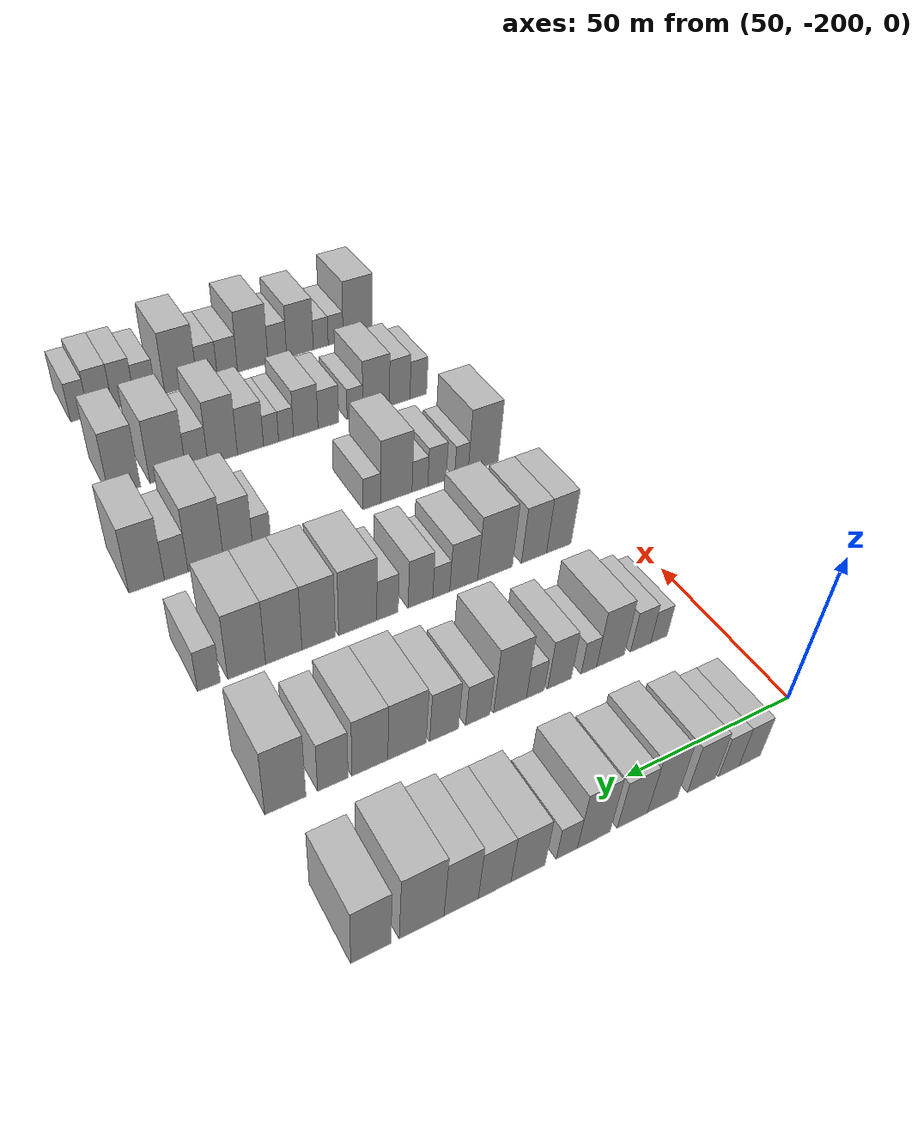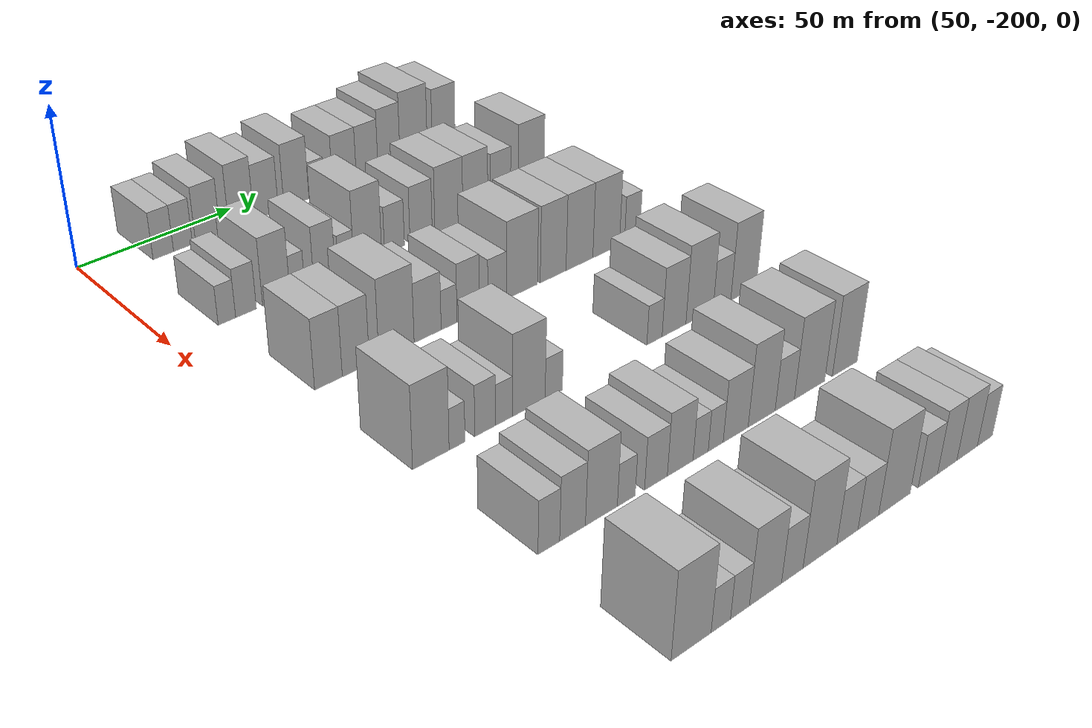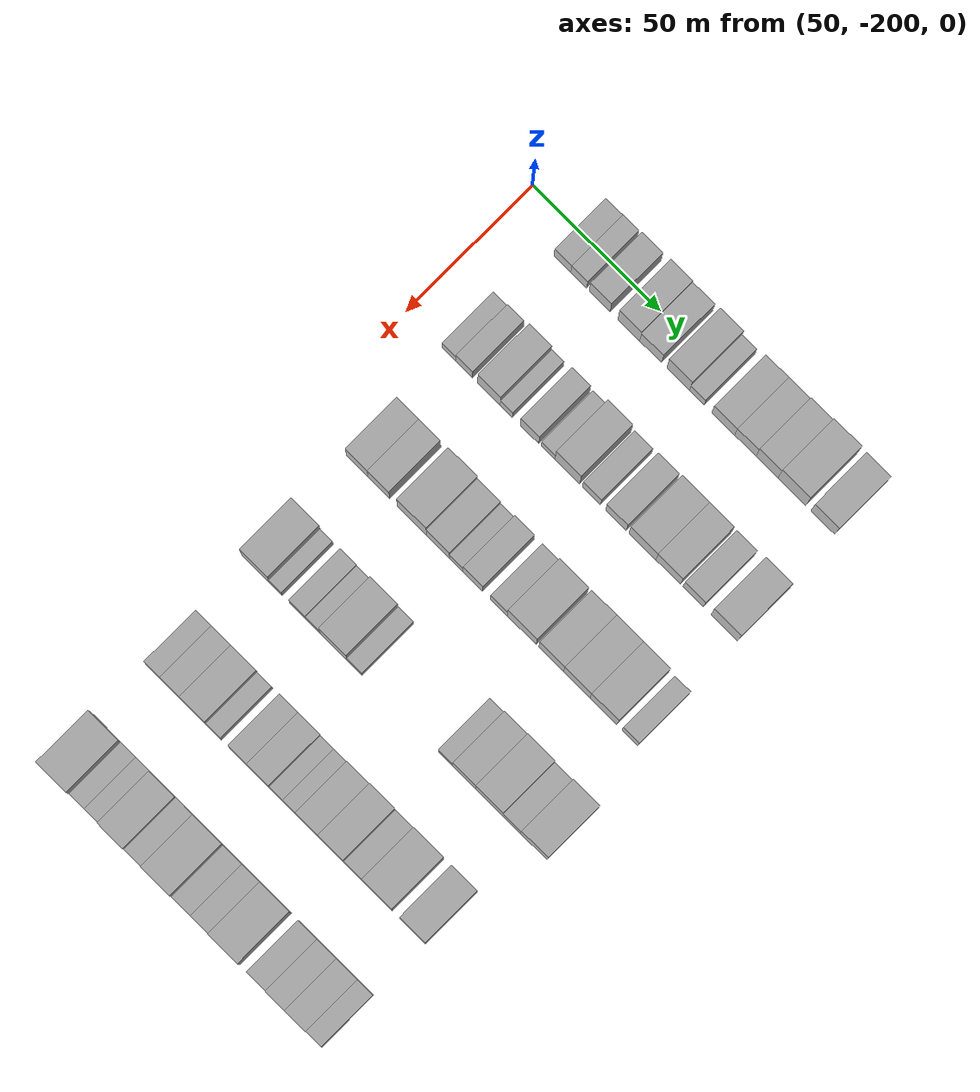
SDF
<sdf version="1.6">
 <world name="default">
  <model name="building_49">
   <static>1</static>
   <pose>50.0000 -178.6159 0 0.000000 0.000000 0.000000</pose>
   <link name="link">
    <pose>0 0 7.50 0 0 0</pose>
    <collision name="collision"><geometry><box><size>20.0000 6.5934 15.0000</size></box></geometry></collision>
    <visual name="visual">
     <cast_shadows>0</cast_shadows>
     <geometry><box><size>20.0000 6.5934 15.0000</size></box></geometry>
     <material>
      <script>
       <uri>model://HANNAS_wall/materials/scripts</uri>
       <uri>model://HANNAS_wall/materials/textures</uri>
       <name>vrc/HANNAS_wall</name>
      </script>
     </material>
    </visual>
   </link>
  </model>
  <model name="building_50">
   <static>1</static>
   <pose>50.0000 -172.2222 0 0.000000 0.000000 0.000000</pose>
   <link name="link">
    <pose>0 0 7.50 0 0 0</pose>
    <collision name="collision"><geometry><box><size>20.0000 6.1939 15.0000</size></box></geometry></collision>
    <visual name="visual">
     <cast_shadows>0</cast_shadows>
     <geometry><box><size>20.0000 6.1939 15.0000</size></box></geometry>
     <material>
      <script>
       <uri>model://HANNAS_wall/materials/scripts</uri>
       <uri>model://HANNAS_wall/materials/textures</uri>
       <name>vrc/HANNAS_wall</name>
      </script>
     </material>
    </visual>
   </link>
  </model>
  <model name="building_51">
   <static>1</static>
   <pose>50.0000 -164.0219 0 0.000000 0.000000 0.000000</pose>
   <link name="link">
    <pose>0 0 9.00 0 0 0</pose>
    <collision name="collision"><geometry><box><size>20.0000 8.2068 18.0000</size></box></geometry></collision>
    <visual name="visual">
     <cast_shadows>0</cast_shadows>
     <geometry><box><size>20.0000 8.2068 18.0000</size></box></geometry>
     <material>
      <script>
       <uri>model://HANNAS_wall/materials/scripts</uri>
       <uri>model://HANNAS_wall/materials/textures</uri>
       <name>vrc/HANNAS_wall</name>
      </script>
     </material>
    </visual>
   </link>
  </model>
  <model name="building_52">
   <static>1</static>
   <pose>50.0000 -152.6471 0 0.000000 0.000000 0.000000</pose>
   <link name="link">
    <pose>0 0 10.50 0 0 0</pose>
    <collision name="collision"><geometry><box><size>20.0000 8.5427 21.0000</size></box></geometry></collision>
    <visual name="visual">
     <cast_shadows>0</cast_shadows>
     <geometry><box><size>20.0000 8.5427 21.0000</size></box></geometry>
     <material>
      <script>
       <uri>model://HANNAS_wall/materials/scripts</uri>
       <uri>model://HANNAS_wall/materials/textures</uri>
       <name>vrc/HANNAS_wall</name>
      </script>
     </material>
    </visual>
   </link>
  </model>
  <model name="building_53">
   <static>1</static>
   <pose>50.0000 -144.0924 0 0.000000 0.000000 0.000000</pose>
   <link name="link">
    <pose>0 0 9.00 0 0 0</pose>
    <collision name="collision"><geometry><box><size>20.0000 8.5667 18.0000</size></box></geometry></collision>
    <visual name="visual">
     <cast_shadows>0</cast_shadows>
     <geometry><box><size>20.0000 8.5667 18.0000</size></box></geometry>
     <material>
      <script>
       <uri>model://HANNAS_wall/materials/scripts</uri>
       <uri>model://HANNAS_wall/materials/textures</uri>
       <name>vrc/HANNAS_wall</name>
      </script>
     </material>
    </visual>
   </link>
  </model>
  <model name="building_54">
   <static>1</static>
   <pose>50.0000 -133.3445 0 0.000000 0.000000 0.000000</pose>
   <link name="link">
    <pose>0 0 10.50 0 0 0</pose>
    <collision name="collision"><geometry><box><size>20.0000 8.9291 21.0000</size></box></geometry></collision>
    <visual name="visual">
     <cast_shadows>0</cast_shadows>
     <geometry><box><size>20.0000 8.9291 21.0000</size></box></geometry>
     <material>
      <script>
       <uri>model://HANNAS_wall/materials/scripts</uri>
       <uri>model://HANNAS_wall/materials/textures</uri>
       <name>vrc/HANNAS_wall</name>
      </script>
     </material>
    </visual>
   </link>
  </model>
  <model name="building_55">
   <static>1</static>
   <pose>50.0000 -126.0293 0 0.000000 0.000000 0.000000</pose>
   <link name="link">
    <pose>0 0 6.00 0 0 0</pose>
    <collision name="collision"><geometry><box><size>20.0000 5.7013 12.0000</size></box></geometry></collision>
    <visual name="visual">
     <cast_shadows>0</cast_shadows>
     <geometry><box><size>20.0000 5.7013 12.0000</size></box></geometry>
     <material>
      <script>
       <uri>model://HANNAS_wall/materials/scripts</uri>
       <uri>model://HANNAS_wall/materials/textures</uri>
       <name>vrc/HANNAS_wall</name>
      </script>
     </material>
    </visual>
   </link>
  </model>
  <model name="building_56">
   <static>1</static>
   <pose>50.0000 -115.7260 0 0.000000 0.000000 0.000000</pose>
   <link name="link">
    <pose>0 0 9.00 0 0 0</pose>
    <collision name="collision"><geometry><box><size>20.0000 8.9053 18.0000</size></box></geometry></collision>
    <visual name="visual">
     <cast_shadows>0</cast_shadows>
     <geometry><box><size>20.0000 8.9053 18.0000</size></box></geometry>
     <material>
      <script>
       <uri>model://HANNAS_wall/materials/scripts</uri>
       <uri>model://HANNAS_wall/materials/textures</uri>
       <name>vrc/HANNAS_wall</name>
      </script>
     </material>
    </visual>
   </link>
  </model>
  <model name="building_57">
   <static>1</static>
   <pose>50.0000 -107.1221 0 0.000000 0.000000 0.000000</pose>
   <link name="link">
    <pose>0 0 9.00 0 0 0</pose>
    <collision name="collision"><geometry><box><size>20.0000 8.3025 18.0000</size></box></geometry></collision>
    <visual name="visual">
     <cast_shadows>0</cast_shadows>
     <geometry><box><size>20.0000 8.3025 18.0000</size></box></geometry>
     <material>
      <script>
       <uri>model://HANNAS_wall/materials/scripts</uri>
       <uri>model://HANNAS_wall/materials/textures</uri>
       <name>vrc/HANNAS_wall</name>
      </script>
     </material>
    </visual>
   </link>
  </model>
  <model name="building_58">
   <static>1</static>
   <pose>50.0000 -98.6853 0 0.000000 0.000000 0.000000</pose>
   <link name="link">
    <pose>0 0 10.50 0 0 0</pose>
    <collision name="collision"><geometry><box><size>20.0000 8.5711 21.0000</size></box></geometry></collision>
    <visual name="visual">
     <cast_shadows>0</cast_shadows>
     <geometry><box><size>20.0000 8.5711 21.0000</size></box></geometry>
     <material>
      <script>
       <uri>model://HANNAS_wall/materials/scripts</uri>
       <uri>model://HANNAS_wall/materials/textures</uri>
       <name>vrc/HANNAS_wall</name>
      </script>
     </material>
    </visual>
   </link>
  </model>
  <model name="building_59">
   <static>1</static>
   <pose>50.0000 -88.9858 0 0.000000 0.000000 0.000000</pose>
   <link name="link">
    <pose>0 0 12.00 0 0 0</pose>
    <collision name="collision"><geometry><box><size>20.0000 10.8278 24.0000</size></box></geometry></collision>
    <visual name="visual">
     <cast_shadows>0</cast_shadows>
     <geometry><box><size>20.0000 10.8278 24.0000</size></box></geometry>
     <material>
      <script>
       <uri>model://HANNAS_wall/materials/scripts</uri>
       <uri>model://HANNAS_wall/materials/textures</uri>
       <name>vrc/HANNAS_wall</name>
      </script>
     </material>
    </visual>
   </link>
  </model>
  <model name="building_60">
   <static>1</static>
   <pose>50.0000 -76.8893 0 0.000000 0.000000 0.000000</pose>
   <link name="link">
    <pose>0 0 10.50 0 0 0</pose>
    <collision name="collision"><geometry><box><size>20.0000 9.3653 21.0000</size></box></geometry></collision>
    <visual name="visual">
     <cast_shadows>0</cast_shadows>
     <geometry><box><size>20.0000 9.3653 21.0000</size></box></geometry>
     <material>
      <script>
       <uri>model://HANNAS_wall/materials/scripts</uri>
       <uri>model://HANNAS_wall/materials/textures</uri>
       <name>vrc/HANNAS_wall</name>
      </script>
     </material>
    </visual>
   </link>
  </model>
  <model name="building_178">
   <static>1</static>
   <pose>90.0000 -183.0956 0 0.000000 0.000000 0.000000</pose>
   <link name="link">
    <pose>0 0 6.00 0 0 0</pose>
    <collision name="collision"><geometry><box><size>20.0000 5.3953 12.0000</size></box></geometry></collision>
    <visual name="visual">
     <cast_shadows>0</cast_shadows>
     <geometry><box><size>20.0000 5.3953 12.0000</size></box></geometry>
     <material>
      <script>
       <uri>model://HANNAS_wall/materials/scripts</uri>
       <uri>model://HANNAS_wall/materials/textures</uri>
       <name>vrc/HANNAS_wall</name>
      </script>
     </material>
    </visual>
   </link>
  </model>
  <model name="building_179">
   <static>1</static>
   <pose>90.0000 -177.1420 0 0.000000 0.000000 0.000000</pose>
   <link name="link">
    <pose>0 0 7.50 0 0 0</pose>
    <collision name="collision"><geometry><box><size>20.0000 6.5119 15.0000</size></box></geometry></collision>
    <visual name="visual">
     <cast_shadows>0</cast_shadows>
     <geometry><box><size>20.0000 6.5119 15.0000</size></box></geometry>
     <material>
      <script>
       <uri>model://HANNAS_wall/materials/scripts</uri>
       <uri>model://HANNAS_wall/materials/textures</uri>
       <name>vrc/HANNAS_wall</name>
      </script>
     </material>
    </visual>
   </link>
  </model>
  <model name="building_180">
   <static>1</static>
   <pose>90.0000 -167.4968 0 0.000000 0.000000 0.000000</pose>
   <link name="link">
    <pose>0 0 10.50 0 0 0</pose>
    <collision name="collision"><geometry><box><size>20.0000 8.7784 21.0000</size></box></geometry></collision>
    <visual name="visual">
     <cast_shadows>0</cast_shadows>
     <geometry><box><size>20.0000 8.7784 21.0000</size></box></geometry>
     <material>
      <script>
       <uri>model://HANNAS_wall/materials/scripts</uri>
       <uri>model://HANNAS_wall/materials/textures</uri>
       <name>vrc/HANNAS_wall</name>
      </script>
     </material>
    </visual>
   </link>
  </model>
  <model name="building_181">
   <static>1</static>
   <pose>90.0000 -160.6952 0 0.000000 0.000000 0.000000</pose>
   <link name="link">
    <pose>0 0 6.00 0 0 0</pose>
    <collision name="collision"><geometry><box><size>20.0000 4.8250 12.0000</size></box></geometry></collision>
    <visual name="visual">
     <cast_shadows>0</cast_shadows>
     <geometry><box><size>20.0000 4.8250 12.0000</size></box></geometry>
     <material>
      <script>
       <uri>model://HANNAS_wall/materials/scripts</uri>
       <uri>model://HANNAS_wall/materials/textures</uri>
       <name>vrc/HANNAS_wall</name>
      </script>
     </material>
    </visual>
   </link>
  </model>
  <model name="building_182">
   <static>1</static>
   <pose>90.0000 -151.6538 0 0.000000 0.000000 0.000000</pose>
   <link name="link">
    <pose>0 0 9.00 0 0 0</pose>
    <collision name="collision"><geometry><box><size>20.0000 7.2577 18.0000</size></box></geometry></collision>
    <visual name="visual">
     <cast_shadows>0</cast_shadows>
     <geometry><box><size>20.0000 7.2577 18.0000</size></box></geometry>
     <material>
      <script>
       <uri>model://HANNAS_wall/materials/scripts</uri>
       <uri>model://HANNAS_wall/materials/textures</uri>
       <name>vrc/HANNAS_wall</name>
      </script>
     </material>
    </visual>
   </link>
  </model>
  <model name="building_183">
   <static>1</static>
   <pose>90.0000 -144.3586 0 0.000000 0.000000 0.000000</pose>
   <link name="link">
    <pose>0 0 6.00 0 0 0</pose>
    <collision name="collision"><geometry><box><size>20.0000 5.3328 12.0000</size></box></geometry></collision>
    <visual name="visual">
     <cast_shadows>0</cast_shadows>
     <geometry><box><size>20.0000 5.3328 12.0000</size></box></geometry>
     <material>
      <script>
       <uri>model://HANNAS_wall/materials/scripts</uri>
       <uri>model://HANNAS_wall/materials/textures</uri>
       <name>vrc/HANNAS_wall</name>
      </script>
     </material>
    </visual>
   </link>
  </model>
  <model name="building_184">
   <static>1</static>
   <pose>90.0000 -136.8428 0 0.000000 0.000000 0.000000</pose>
   <link name="link">
    <pose>0 0 12.00 0 0 0</pose>
    <collision name="collision"><geometry><box><size>20.0000 9.6987 24.0000</size></box></geometry></collision>
    <visual name="visual">
     <cast_shadows>0</cast_shadows>
     <geometry><box><size>20.0000 9.6987 24.0000</size></box></geometry>
     <material>
      <script>
       <uri>model://HANNAS_wall/materials/scripts</uri>
       <uri>model://HANNAS_wall/materials/textures</uri>
       <name>vrc/HANNAS_wall</name>
      </script>
     </material>
    </visual>
   </link>
  </model>
  <model name="building_185">
   <static>1</static>
   <pose>90.0000 -127.4532 0 0.000000 0.000000 0.000000</pose>
   <link name="link">
    <pose>0 0 7.50 0 0 0</pose>
    <collision name="collision"><geometry><box><size>20.0000 7.0805 15.0000</size></box></geometry></collision>
    <visual name="visual">
     <cast_shadows>0</cast_shadows>
     <geometry><box><size>20.0000 7.0805 15.0000</size></box></geometry>
     <material>
      <script>
       <uri>model://HANNAS_wall/materials/scripts</uri>
       <uri>model://HANNAS_wall/materials/textures</uri>
       <name>vrc/HANNAS_wall</name>
      </script>
     </material>
    </visual>
   </link>
  </model>
  <model name="building_186">
   <static>1</static>
   <pose>90.0000 -117.8564 0 0.000000 0.000000 0.000000</pose>
   <link name="link">
    <pose>0 0 9.00 0 0 0</pose>
    <collision name="collision"><geometry><box><size>20.0000 8.1130 18.0000</size></box></geometry></collision>
    <visual name="visual">
     <cast_shadows>0</cast_shadows>
     <geometry><box><size>20.0000 8.1130 18.0000</size></box></geometry>
     <material>
      <script>
       <uri>model://HANNAS_wall/materials/scripts</uri>
       <uri>model://HANNAS_wall/materials/textures</uri>
       <name>vrc/HANNAS_wall</name>
      </script>
     </material>
    </visual>
   </link>
  </model>
  <model name="building_187">
   <static>1</static>
   <pose>90.0000 -107.5642 0 0.000000 0.000000 0.000000</pose>
   <link name="link">
    <pose>0 0 10.50 0 0 0</pose>
    <collision name="collision"><geometry><box><size>20.0000 10.4715 21.0000</size></box></geometry></collision>
    <visual name="visual">
     <cast_shadows>0</cast_shadows>
     <geometry><box><size>20.0000 10.4715 21.0000</size></box></geometry>
     <material>
      <script>
       <uri>model://HANNAS_wall/materials/scripts</uri>
       <uri>model://HANNAS_wall/materials/textures</uri>
       <name>vrc/HANNAS_wall</name>
      </script>
     </material>
    </visual>
   </link>
  </model>
  <model name="building_188">
   <static>1</static>
   <pose>90.0000 -97.5428 0 0.000000 0.000000 0.000000</pose>
   <link name="link">
    <pose>0 0 10.50 0 0 0</pose>
    <collision name="collision"><geometry><box><size>20.0000 9.5713 21.0000</size></box></geometry></collision>
    <visual name="visual">
     <cast_shadows>0</cast_shadows>
     <geometry><box><size>20.0000 9.5713 21.0000</size></box></geometry>
     <material>
      <script>
       <uri>model://HANNAS_wall/materials/scripts</uri>
       <uri>model://HANNAS_wall/materials/textures</uri>
       <name>vrc/HANNAS_wall</name>
      </script>
     </material>
    </visual>
   </link>
  </model>
  <model name="building_189">
   <static>1</static>
   <pose>90.0000 -87.7874 0 0.000000 0.000000 0.000000</pose>
   <link name="link">
    <pose>0 0 9.00 0 0 0</pose>
    <collision name="collision"><geometry><box><size>20.0000 7.9394 18.0000</size></box></geometry></collision>
    <visual name="visual">
     <cast_shadows>0</cast_shadows>
     <geometry><box><size>20.0000 7.9394 18.0000</size></box></geometry>
     <material>
      <script>
       <uri>model://HANNAS_wall/materials/scripts</uri>
       <uri>model://HANNAS_wall/materials/textures</uri>
       <name>vrc/HANNAS_wall</name>
      </script>
     </material>
    </visual>
   </link>
  </model>
  <model name="building_190">
   <static>1</static>
   <pose>90.0000 -75.6254 0 0.000000 0.000000 0.000000</pose>
   <link name="link">
    <pose>0 0 12.00 0 0 0</pose>
    <collision name="collision"><geometry><box><size>20.0000 10.3847 24.0000</size></box></geometry></collision>
    <visual name="visual">
     <cast_shadows>0</cast_shadows>
     <geometry><box><size>20.0000 10.3847 24.0000</size></box></geometry>
     <material>
      <script>
       <uri>model://HANNAS_wall/materials/scripts</uri>
       <uri>model://HANNAS_wall/materials/textures</uri>
       <name>vrc/HANNAS_wall</name>
      </script>
     </material>
    </visual>
   </link>
  </model>
  <model name="building_313">
   <static>1</static>
   <pose>130.0000 -178.9961 0 0.000000 0.000000 0.000000</pose>
   <link name="link">
    <pose>0 0 10.50 0 0 0</pose>
    <collision name="collision"><geometry><box><size>20.0000 8.4274 21.0000</size></box></geometry></collision>
    <visual name="visual">
     <cast_shadows>0</cast_shadows>
     <geometry><box><size>20.0000 8.4274 21.0000</size></box></geometry>
     <material>
      <script>
       <uri>model://HANNAS_wall/materials/scripts</uri>
       <uri>model://HANNAS_wall/materials/textures</uri>
       <name>vrc/HANNAS_wall</name>
      </script>
     </material>
    </visual>
   </link>
  </model>
  <model name="building_314">
   <static>1</static>
   <pose>130.0000 -170.5644 0 0.000000 0.000000 0.000000</pose>
   <link name="link">
    <pose>0 0 10.50 0 0 0</pose>
    <collision name="collision"><geometry><box><size>20.0000 8.4360 21.0000</size></box></geometry></collision>
    <visual name="visual">
     <cast_shadows>0</cast_shadows>
     <geometry><box><size>20.0000 8.4360 21.0000</size></box></geometry>
     <material>
      <script>
       <uri>model://HANNAS_wall/materials/scripts</uri>
       <uri>model://HANNAS_wall/materials/textures</uri>
       <name>vrc/HANNAS_wall</name>
      </script>
     </material>
    </visual>
   </link>
  </model>
  <model name="building_315">
   <static>1</static>
   <pose>130.0000 -157.6617 0 0.000000 0.000000 0.000000</pose>
   <link name="link">
    <pose>0 0 12.00 0 0 0</pose>
    <collision name="collision"><geometry><box><size>20.0000 11.3694 24.0000</size></box></geometry></collision>
    <visual name="visual">
     <cast_shadows>0</cast_shadows>
     <geometry><box><size>20.0000 11.3694 24.0000</size></box></geometry>
     <material>
      <script>
       <uri>model://HANNAS_wall/materials/scripts</uri>
       <uri>model://HANNAS_wall/materials/textures</uri>
       <name>vrc/HANNAS_wall</name>
      </script>
     </material>
    </visual>
   </link>
  </model>
  <model name="building_316">
   <static>1</static>
   <pose>130.0000 -147.4910 0 0.000000 0.000000 0.000000</pose>
   <link name="link">
    <pose>0 0 9.00 0 0 0</pose>
    <collision name="collision"><geometry><box><size>20.0000 8.9719 18.0000</size></box></geometry></collision>
    <visual name="visual">
     <cast_shadows>0</cast_shadows>
     <geometry><box><size>20.0000 8.9719 18.0000</size></box></geometry>
     <material>
      <script>
       <uri>model://HANNAS_wall/materials/scripts</uri>
       <uri>model://HANNAS_wall/materials/textures</uri>
       <name>vrc/HANNAS_wall</name>
      </script>
     </material>
    </visual>
   </link>
  </model>
  <model name="building_317">
   <static>1</static>
   <pose>130.0000 -140.3315 0 0.000000 0.000000 0.000000</pose>
   <link name="link">
    <pose>0 0 6.00 0 0 0</pose>
    <collision name="collision"><geometry><box><size>20.0000 5.3473 12.0000</size></box></geometry></collision>
    <visual name="visual">
     <cast_shadows>0</cast_shadows>
     <geometry><box><size>20.0000 5.3473 12.0000</size></box></geometry>
     <material>
      <script>
       <uri>model://HANNAS_wall/materials/scripts</uri>
       <uri>model://HANNAS_wall/materials/textures</uri>
       <name>vrc/HANNAS_wall</name>
      </script>
     </material>
    </visual>
   </link>
  </model>
  <model name="building_318">
   <static>1</static>
   <pose>130.0000 -133.8210 0 0.000000 0.000000 0.000000</pose>
   <link name="link">
    <pose>0 0 9.00 0 0 0</pose>
    <collision name="collision"><geometry><box><size>20.0000 7.6737 18.0000</size></box></geometry></collision>
    <visual name="visual">
     <cast_shadows>0</cast_shadows>
     <geometry><box><size>20.0000 7.6737 18.0000</size></box></geometry>
     <material>
      <script>
       <uri>model://HANNAS_wall/materials/scripts</uri>
       <uri>model://HANNAS_wall/materials/textures</uri>
       <name>vrc/HANNAS_wall</name>
      </script>
     </material>
    </visual>
   </link>
  </model>
  <model name="building_319">
   <static>1</static>
   <pose>130.0000 -123.7245 0 0.000000 0.000000 0.000000</pose>
   <link name="link">
    <pose>0 0 7.50 0 0 0</pose>
    <collision name="collision"><geometry><box><size>20.0000 6.5192 15.0000</size></box></geometry></collision>
    <visual name="visual">
     <cast_shadows>0</cast_shadows>
     <geometry><box><size>20.0000 6.5192 15.0000</size></box></geometry>
     <material>
      <script>
       <uri>model://HANNAS_wall/materials/scripts</uri>
       <uri>model://HANNAS_wall/materials/textures</uri>
       <name>vrc/HANNAS_wall</name>
      </script>
     </material>
    </visual>
   </link>
  </model>
  <model name="building_320">
   <static>1</static>
   <pose>130.0000 -114.8092 0 0.000000 0.000000 0.000000</pose>
   <link name="link">
    <pose>0 0 12.00 0 0 0</pose>
    <collision name="collision"><geometry><box><size>20.0000 11.3115 24.0000</size></box></geometry></collision>
    <visual name="visual">
     <cast_shadows>0</cast_shadows>
     <geometry><box><size>20.0000 11.3115 24.0000</size></box></geometry>
     <material>
      <script>
       <uri>model://HANNAS_wall/materials/scripts</uri>
       <uri>model://HANNAS_wall/materials/textures</uri>
       <name>vrc/HANNAS_wall</name>
      </script>
     </material>
    </visual>
   </link>
  </model>
  <model name="building_321">
   <static>1</static>
   <pose>130.0000 -103.3249 0 0.000000 0.000000 0.000000</pose>
   <link name="link">
    <pose>0 0 12.00 0 0 0</pose>
    <collision name="collision"><geometry><box><size>20.0000 9.6570 24.0000</size></box></geometry></collision>
    <visual name="visual">
     <cast_shadows>0</cast_shadows>
     <geometry><box><size>20.0000 9.6570 24.0000</size></box></geometry>
     <material>
      <script>
       <uri>model://HANNAS_wall/materials/scripts</uri>
       <uri>model://HANNAS_wall/materials/textures</uri>
       <name>vrc/HANNAS_wall</name>
      </script>
     </material>
    </visual>
   </link>
  </model>
  <model name="building_322">
   <static>1</static>
   <pose>130.0000 -93.3505 0 0.000000 0.000000 0.000000</pose>
   <link name="link">
    <pose>0 0 12.00 0 0 0</pose>
    <collision name="collision"><geometry><box><size>20.0000 10.2918 24.0000</size></box></geometry></collision>
    <visual name="visual">
     <cast_shadows>0</cast_shadows>
     <geometry><box><size>20.0000 10.2918 24.0000</size></box></geometry>
     <material>
      <script>
       <uri>model://HANNAS_wall/materials/scripts</uri>
       <uri>model://HANNAS_wall/materials/textures</uri>
       <name>vrc/HANNAS_wall</name>
      </script>
     </material>
    </visual>
   </link>
  </model>
  <model name="building_323">
   <static>1</static>
   <pose>130.0000 -82.9667 0 0.000000 0.000000 0.000000</pose>
   <link name="link">
    <pose>0 0 12.00 0 0 0</pose>
    <collision name="collision"><geometry><box><size>20.0000 10.4757 24.0000</size></box></geometry></collision>
    <visual name="visual">
     <cast_shadows>0</cast_shadows>
     <geometry><box><size>20.0000 10.4757 24.0000</size></box></geometry>
     <material>
      <script>
       <uri>model://HANNAS_wall/materials/scripts</uri>
       <uri>model://HANNAS_wall/materials/textures</uri>
       <name>vrc/HANNAS_wall</name>
      </script>
     </material>
    </visual>
   </link>
  </model>
  <model name="building_324">
   <static>1</static>
   <pose>130.0000 -72.6318 0 0.000000 0.000000 0.000000</pose>
   <link name="link">
    <pose>0 0 7.50 0 0 0</pose>
    <collision name="collision"><geometry><box><size>20.0000 6.1940 15.0000</size></box></geometry></collision>
    <visual name="visual">
     <cast_shadows>0</cast_shadows>
     <geometry><box><size>20.0000 6.1940 15.0000</size></box></geometry>
     <material>
      <script>
       <uri>model://HANNAS_wall/materials/scripts</uri>
       <uri>model://HANNAS_wall/materials/textures</uri>
       <name>vrc/HANNAS_wall</name>
      </script>
     </material>
    </visual>
   </link>
  </model>
  <model name="building_447">
   <static>1</static>
   <pose>170.0000 -178.5637 0 0.000000 0.000000 0.000000</pose>
   <link name="link">
    <pose>0 0 12.00 0 0 0</pose>
    <collision name="collision"><geometry><box><size>20.0000 10.8649 24.0000</size></box></geometry></collision>
    <visual name="visual">
     <cast_shadows>0</cast_shadows>
     <geometry><box><size>20.0000 10.8649 24.0000</size></box></geometry>
     <material>
      <script>
       <uri>model://HANNAS_wall/materials/scripts</uri>
       <uri>model://HANNAS_wall/materials/textures</uri>
       <name>vrc/HANNAS_wall</name>
      </script>
     </material>
    </visual>
   </link>
  </model>
  <model name="building_448">
   <static>1</static>
   <pose>170.0000 -170.7254 0 0.000000 0.000000 0.000000</pose>
   <link name="link">
    <pose>0 0 6.00 0 0 0</pose>
    <collision name="collision"><geometry><box><size>20.0000 4.8117 12.0000</size></box></geometry></collision>
    <visual name="visual">
     <cast_shadows>0</cast_shadows>
     <geometry><box><size>20.0000 4.8117 12.0000</size></box></geometry>
     <material>
      <script>
       <uri>model://HANNAS_wall/materials/scripts</uri>
       <uri>model://HANNAS_wall/materials/textures</uri>
       <name>vrc/HANNAS_wall</name>
      </script>
     </material>
    </visual>
   </link>
  </model>
  <model name="building_449">
   <static>1</static>
   <pose>170.0000 -162.1202 0 0.000000 0.000000 0.000000</pose>
   <link name="link">
    <pose>0 0 7.50 0 0 0</pose>
    <collision name="collision"><geometry><box><size>20.0000 6.3988 15.0000</size></box></geometry></collision>
    <visual name="visual">
     <cast_shadows>0</cast_shadows>
     <geometry><box><size>20.0000 6.3988 15.0000</size></box></geometry>
     <material>
      <script>
       <uri>model://HANNAS_wall/materials/scripts</uri>
       <uri>model://HANNAS_wall/materials/textures</uri>
       <name>vrc/HANNAS_wall</name>
      </script>
     </material>
    </visual>
   </link>
  </model>
  <model name="building_450">
   <static>1</static>
   <pose>170.0000 -156.2086 0 0.000000 0.000000 0.000000</pose>
   <link name="link">
    <pose>0 0 6.00 0 0 0</pose>
    <collision name="collision"><geometry><box><size>20.0000 5.4243 12.0000</size></box></geometry></collision>
    <visual name="visual">
     <cast_shadows>0</cast_shadows>
     <geometry><box><size>20.0000 5.4243 12.0000</size></box></geometry>
     <material>
      <script>
       <uri>model://HANNAS_wall/materials/scripts</uri>
       <uri>model://HANNAS_wall/materials/textures</uri>
       <name>vrc/HANNAS_wall</name>
      </script>
     </material>
    </visual>
   </link>
  </model>
  <model name="building_451">
   <static>1</static>
   <pose>170.0000 -148.1398 0 0.000000 0.000000 0.000000</pose>
   <link name="link">
    <pose>0 0 12.00 0 0 0</pose>
    <collision name="collision"><geometry><box><size>20.0000 10.7134 24.0000</size></box></geometry></collision>
    <visual name="visual">
     <cast_shadows>0</cast_shadows>
     <geometry><box><size>20.0000 10.7134 24.0000</size></box></geometry>
     <material>
      <script>
       <uri>model://HANNAS_wall/materials/scripts</uri>
       <uri>model://HANNAS_wall/materials/textures</uri>
       <name>vrc/HANNAS_wall</name>
      </script>
     </material>
    </visual>
   </link>
  </model>
  <model name="building_452">
   <static>1</static>
   <pose>170.0000 -139.9015 0 0.000000 0.000000 0.000000</pose>
   <link name="link">
    <pose>0 0 6.00 0 0 0</pose>
    <collision name="collision"><geometry><box><size>20.0000 5.7631 12.0000</size></box></geometry></collision>
    <visual name="visual">
     <cast_shadows>0</cast_shadows>
     <geometry><box><size>20.0000 5.7631 12.0000</size></box></geometry>
     <material>
      <script>
       <uri>model://HANNAS_wall/materials/scripts</uri>
       <uri>model://HANNAS_wall/materials/textures</uri>
       <name>vrc/HANNAS_wall</name>
      </script>
     </material>
    </visual>
   </link>
  </model>
  <model name="building_453">
   <static>1</static>
   <pose>170.0000 -104.5792 0 0.000000 0.000000 0.000000</pose>
   <link name="link">
    <pose>0 0 6.00 0 0 0</pose>
    <collision name="collision"><geometry><box><size>20.0000 5.6272 12.0000</size></box></geometry></collision>
    <visual name="visual">
     <cast_shadows>0</cast_shadows>
     <geometry><box><size>20.0000 5.6272 12.0000</size></box></geometry>
     <material>
      <script>
       <uri>model://HANNAS_wall/materials/scripts</uri>
       <uri>model://HANNAS_wall/materials/textures</uri>
       <name>vrc/HANNAS_wall</name>
      </script>
     </material>
    </visual>
   </link>
  </model>
  <model name="building_454">
   <static>1</static>
   <pose>170.0000 -97.2860 0 0.000000 0.000000 0.000000</pose>
   <link name="link">
    <pose>0 0 10.50 0 0 0</pose>
    <collision name="collision"><geometry><box><size>20.0000 8.9593 21.0000</size></box></geometry></collision>
    <visual name="visual">
     <cast_shadows>0</cast_shadows>
     <geometry><box><size>20.0000 8.9593 21.0000</size></box></geometry>
     <material>
      <script>
       <uri>model://HANNAS_wall/materials/scripts</uri>
       <uri>model://HANNAS_wall/materials/textures</uri>
       <name>vrc/HANNAS_wall</name>
      </script>
     </material>
    </visual>
   </link>
  </model>
  <model name="building_455">
   <static>1</static>
   <pose>170.0000 -87.5398 0 0.000000 0.000000 0.000000</pose>
   <link name="link">
    <pose>0 0 12.00 0 0 0</pose>
    <collision name="collision"><geometry><box><size>20.0000 10.5330 24.0000</size></box></geometry></collision>
    <visual name="visual">
     <cast_shadows>0</cast_shadows>
     <geometry><box><size>20.0000 10.5330 24.0000</size></box></geometry>
     <material>
      <script>
       <uri>model://HANNAS_wall/materials/scripts</uri>
       <uri>model://HANNAS_wall/materials/textures</uri>
       <name>vrc/HANNAS_wall</name>
      </script>
     </material>
    </visual>
   </link>
  </model>
  <model name="building_456">
   <static>1</static>
   <pose>170.0000 -78.7825 0 0.000000 0.000000 0.000000</pose>
   <link name="link">
    <pose>0 0 7.50 0 0 0</pose>
    <collision name="collision"><geometry><box><size>20.0000 6.9817 15.0000</size></box></geometry></collision>
    <visual name="visual">
     <cast_shadows>0</cast_shadows>
     <geometry><box><size>20.0000 6.9817 15.0000</size></box></geometry>
     <material>
      <script>
       <uri>model://HANNAS_wall/materials/scripts</uri>
       <uri>model://HANNAS_wall/materials/textures</uri>
       <name>vrc/HANNAS_wall</name>
      </script>
     </material>
    </visual>
   </link>
  </model>
  <model name="building_457">
   <static>1</static>
   <pose>170.0000 -70.1572 0 0.000000 0.000000 0.000000</pose>
   <link name="link">
    <pose>0 0 12.00 0 0 0</pose>
    <collision name="collision"><geometry><box><size>20.0000 10.2690 24.0000</size></box></geometry></collision>
    <visual name="visual">
     <cast_shadows>0</cast_shadows>
     <geometry><box><size>20.0000 10.2690 24.0000</size></box></geometry>
     <material>
      <script>
       <uri>model://HANNAS_wall/materials/scripts</uri>
       <uri>model://HANNAS_wall/materials/textures</uri>
       <name>vrc/HANNAS_wall</name>
      </script>
     </material>
    </visual>
   </link>
  </model>
  <model name="building_581">
   <static>1</static>
   <pose>210.0000 -178.1596 0 0.000000 0.000000 0.000000</pose>
   <link name="link">
    <pose>0 0 7.50 0 0 0</pose>
    <collision name="collision"><geometry><box><size>20.0000 6.3504 15.0000</size></box></geometry></collision>
    <visual name="visual">
     <cast_shadows>0</cast_shadows>
     <geometry><box><size>20.0000 6.3504 15.0000</size></box></geometry>
     <material>
      <script>
       <uri>model://HANNAS_wall/materials/scripts</uri>
       <uri>model://HANNAS_wall/materials/textures</uri>
       <name>vrc/HANNAS_wall</name>
      </script>
     </material>
    </visual>
   </link>
  </model>
  <model name="building_582">
   <static>1</static>
   <pose>210.0000 -171.1321 0 0.000000 0.000000 0.000000</pose>
   <link name="link">
    <pose>0 0 9.00 0 0 0</pose>
    <collision name="collision"><geometry><box><size>20.0000 7.7047 18.0000</size></box></geometry></collision>
    <visual name="visual">
     <cast_shadows>0</cast_shadows>
     <geometry><box><size>20.0000 7.7047 18.0000</size></box></geometry>
     <material>
      <script>
       <uri>model://HANNAS_wall/materials/scripts</uri>
       <uri>model://HANNAS_wall/materials/textures</uri>
       <name>vrc/HANNAS_wall</name>
      </script>
     </material>
    </visual>
   </link>
  </model>
  <model name="building_583">
   <static>1</static>
   <pose>210.0000 -162.3717 0 0.000000 0.000000 0.000000</pose>
   <link name="link">
    <pose>0 0 10.50 0 0 0</pose>
    <collision name="collision"><geometry><box><size>20.0000 9.8160 21.0000</size></box></geometry></collision>
    <visual name="visual">
     <cast_shadows>0</cast_shadows>
     <geometry><box><size>20.0000 9.8160 21.0000</size></box></geometry>
     <material>
      <script>
       <uri>model://HANNAS_wall/materials/scripts</uri>
       <uri>model://HANNAS_wall/materials/textures</uri>
       <name>vrc/HANNAS_wall</name>
      </script>
     </material>
    </visual>
   </link>
  </model>
  <model name="building_584">
   <static>1</static>
   <pose>210.0000 -154.6531 0 0.000000 0.000000 0.000000</pose>
   <link name="link">
    <pose>0 0 6.00 0 0 0</pose>
    <collision name="collision"><geometry><box><size>20.0000 5.6213 12.0000</size></box></geometry></collision>
    <visual name="visual">
     <cast_shadows>0</cast_shadows>
     <geometry><box><size>20.0000 5.6213 12.0000</size></box></geometry>
     <material>
      <script>
       <uri>model://HANNAS_wall/materials/scripts</uri>
       <uri>model://HANNAS_wall/materials/textures</uri>
       <name>vrc/HANNAS_wall</name>
      </script>
     </material>
    </visual>
   </link>
  </model>
  <model name="building_585">
   <static>1</static>
   <pose>210.0000 -145.1514 0 0.000000 0.000000 0.000000</pose>
   <link name="link">
    <pose>0 0 7.50 0 0 0</pose>
    <collision name="collision"><geometry><box><size>20.0000 7.3820 15.0000</size></box></geometry></collision>
    <visual name="visual">
     <cast_shadows>0</cast_shadows>
     <geometry><box><size>20.0000 7.3820 15.0000</size></box></geometry>
     <material>
      <script>
       <uri>model://HANNAS_wall/materials/scripts</uri>
       <uri>model://HANNAS_wall/materials/textures</uri>
       <name>vrc/HANNAS_wall</name>
      </script>
     </material>
    </visual>
   </link>
  </model>
  <model name="building_586">
   <static>1</static>
   <pose>210.0000 -137.1719 0 0.000000 0.000000 0.000000</pose>
   <link name="link">
    <pose>0 0 9.00 0 0 0</pose>
    <collision name="collision"><geometry><box><size>20.0000 8.5771 18.0000</size></box></geometry></collision>
    <visual name="visual">
     <cast_shadows>0</cast_shadows>
     <geometry><box><size>20.0000 8.5771 18.0000</size></box></geometry>
     <material>
      <script>
       <uri>model://HANNAS_wall/materials/scripts</uri>
       <uri>model://HANNAS_wall/materials/textures</uri>
       <name>vrc/HANNAS_wall</name>
      </script>
     </material>
    </visual>
   </link>
  </model>
  <model name="building_587">
   <static>1</static>
   <pose>210.0000 -130.3076 0 0.000000 0.000000 0.000000</pose>
   <link name="link">
    <pose>0 0 6.00 0 0 0</pose>
    <collision name="collision"><geometry><box><size>20.0000 5.1515 12.0000</size></box></geometry></collision>
    <visual name="visual">
     <cast_shadows>0</cast_shadows>
     <geometry><box><size>20.0000 5.1515 12.0000</size></box></geometry>
     <material>
      <script>
       <uri>model://HANNAS_wall/materials/scripts</uri>
       <uri>model://HANNAS_wall/materials/textures</uri>
       <name>vrc/HANNAS_wall</name>
      </script>
     </material>
    </visual>
   </link>
  </model>
  <model name="building_588">
   <static>1</static>
   <pose>210.0000 -125.1502 0 0.000000 0.000000 0.000000</pose>
   <link name="link">
    <pose>0 0 6.00 0 0 0</pose>
    <collision name="collision"><geometry><box><size>20.0000 5.1634 12.0000</size></box></geometry></collision>
    <visual name="visual">
     <cast_shadows>0</cast_shadows>
     <geometry><box><size>20.0000 5.1634 12.0000</size></box></geometry>
     <material>
      <script>
       <uri>model://HANNAS_wall/materials/scripts</uri>
       <uri>model://HANNAS_wall/materials/textures</uri>
       <name>vrc/HANNAS_wall</name>
      </script>
     </material>
    </visual>
   </link>
  </model>
  <model name="building_589">
   <static>1</static>
   <pose>210.0000 -118.1616 0 0.000000 0.000000 0.000000</pose>
   <link name="link">
    <pose>0 0 9.00 0 0 0</pose>
    <collision name="collision"><geometry><box><size>20.0000 8.8136 18.0000</size></box></geometry></collision>
    <visual name="visual">
     <cast_shadows>0</cast_shadows>
     <geometry><box><size>20.0000 8.8136 18.0000</size></box></geometry>
     <material>
      <script>
       <uri>model://HANNAS_wall/materials/scripts</uri>
       <uri>model://HANNAS_wall/materials/textures</uri>
       <name>vrc/HANNAS_wall</name>
      </script>
     </material>
    </visual>
   </link>
  </model>
  <model name="building_590">
   <static>1</static>
   <pose>210.0000 -108.8539 0 0.000000 0.000000 0.000000</pose>
   <link name="link">
    <pose>0 0 12.00 0 0 0</pose>
    <collision name="collision"><geometry><box><size>20.0000 9.8020 24.0000</size></box></geometry></collision>
    <visual name="visual">
     <cast_shadows>0</cast_shadows>
     <geometry><box><size>20.0000 9.8020 24.0000</size></box></geometry>
     <material>
      <script>
       <uri>model://HANNAS_wall/materials/scripts</uri>
       <uri>model://HANNAS_wall/materials/textures</uri>
       <name>vrc/HANNAS_wall</name>
      </script>
     </material>
    </visual>
   </link>
  </model>
  <model name="building_591">
   <static>1</static>
   <pose>210.0000 -100.3621 0 0.000000 0.000000 0.000000</pose>
   <link name="link">
    <pose>0 0 7.50 0 0 0</pose>
    <collision name="collision"><geometry><box><size>20.0000 7.1817 15.0000</size></box></geometry></collision>
    <visual name="visual">
     <cast_shadows>0</cast_shadows>
     <geometry><box><size>20.0000 7.1817 15.0000</size></box></geometry>
     <material>
      <script>
       <uri>model://HANNAS_wall/materials/scripts</uri>
       <uri>model://HANNAS_wall/materials/textures</uri>
       <name>vrc/HANNAS_wall</name>
      </script>
     </material>
    </visual>
   </link>
  </model>
  <model name="building_592">
   <static>1</static>
   <pose>210.0000 -90.9881 0 0.000000 0.000000 0.000000</pose>
   <link name="link">
    <pose>0 0 12.00 0 0 0</pose>
    <collision name="collision"><geometry><box><size>20.0000 11.5662 24.0000</size></box></geometry></collision>
    <visual name="visual">
     <cast_shadows>0</cast_shadows>
     <geometry><box><size>20.0000 11.5662 24.0000</size></box></geometry>
     <material>
      <script>
       <uri>model://HANNAS_wall/materials/scripts</uri>
       <uri>model://HANNAS_wall/materials/textures</uri>
       <name>vrc/HANNAS_wall</name>
      </script>
     </material>
    </visual>
   </link>
  </model>
  <model name="building_593">
   <static>1</static>
   <pose>210.0000 -77.2796 0 0.000000 0.000000 0.000000</pose>
   <link name="link">
    <pose>0 0 12.00 0 0 0</pose>
    <collision name="collision"><geometry><box><size>20.0000 9.8508 24.0000</size></box></geometry></collision>
    <visual name="visual">
     <cast_shadows>0</cast_shadows>
     <geometry><box><size>20.0000 9.8508 24.0000</size></box></geometry>
     <material>
      <script>
       <uri>model://HANNAS_wall/materials/scripts</uri>
       <uri>model://HANNAS_wall/materials/textures</uri>
       <name>vrc/HANNAS_wall</name>
      </script>
     </material>
    </visual>
   </link>
  </model>
  <model name="building_722">
   <static>1</static>
   <pose>250.0000 -176.2083 0 0.000000 0.000000 0.000000</pose>
   <link name="link">
    <pose>0 0 12.00 0 0 0</pose>
    <collision name="collision"><geometry><box><size>20.0000 11.6386 24.0000</size></box></geometry></collision>
    <visual name="visual">
     <cast_shadows>0</cast_shadows>
     <geometry><box><size>20.0000 11.6386 24.0000</size></box></geometry>
     <material>
      <script>
       <uri>model://HANNAS_wall/materials/scripts</uri>
       <uri>model://HANNAS_wall/materials/textures</uri>
       <name>vrc/HANNAS_wall</name>
      </script>
     </material>
    </visual>
   </link>
  </model>
  <model name="building_723">
   <static>1</static>
   <pose>250.0000 -167.4854 0 0.000000 0.000000 0.000000</pose>
   <link name="link">
    <pose>0 0 6.00 0 0 0</pose>
    <collision name="collision"><geometry><box><size>20.0000 5.8072 12.0000</size></box></geometry></collision>
    <visual name="visual">
     <cast_shadows>0</cast_shadows>
     <geometry><box><size>20.0000 5.8072 12.0000</size></box></geometry>
     <material>
      <script>
       <uri>model://HANNAS_wall/materials/scripts</uri>
       <uri>model://HANNAS_wall/materials/textures</uri>
       <name>vrc/HANNAS_wall</name>
      </script>
     </material>
    </visual>
   </link>
  </model>
  <model name="building_724">
   <static>1</static>
   <pose>250.0000 -161.6906 0 0.000000 0.000000 0.000000</pose>
   <link name="link">
    <pose>0 0 6.00 0 0 0</pose>
    <collision name="collision"><geometry><box><size>20.0000 5.7826 12.0000</size></box></geometry></collision>
    <visual name="visual">
     <cast_shadows>0</cast_shadows>
     <geometry><box><size>20.0000 5.7826 12.0000</size></box></geometry>
     <material>
      <script>
       <uri>model://HANNAS_wall/materials/scripts</uri>
       <uri>model://HANNAS_wall/materials/textures</uri>
       <name>vrc/HANNAS_wall</name>
      </script>
     </material>
    </visual>
   </link>
  </model>
  <model name="building_725">
   <static>1</static>
   <pose>250.0000 -153.7546 0 0.000000 0.000000 0.000000</pose>
   <link name="link">
    <pose>0 0 10.50 0 0 0</pose>
    <collision name="collision"><geometry><box><size>20.0000 10.0893 21.0000</size></box></geometry></collision>
    <visual name="visual">
     <cast_shadows>0</cast_shadows>
     <geometry><box><size>20.0000 10.0893 21.0000</size></box></geometry>
     <material>
      <script>
       <uri>model://HANNAS_wall/materials/scripts</uri>
       <uri>model://HANNAS_wall/materials/textures</uri>
       <name>vrc/HANNAS_wall</name>
      </script>
     </material>
    </visual>
   </link>
  </model>
  <model name="building_726">
   <static>1</static>
   <pose>250.0000 -145.2144 0 0.000000 0.000000 0.000000</pose>
   <link name="link">
    <pose>0 0 7.50 0 0 0</pose>
    <collision name="collision"><geometry><box><size>20.0000 6.9913 15.0000</size></box></geometry></collision>
    <visual name="visual">
     <cast_shadows>0</cast_shadows>
     <geometry><box><size>20.0000 6.9913 15.0000</size></box></geometry>
     <material>
      <script>
       <uri>model://HANNAS_wall/materials/scripts</uri>
       <uri>model://HANNAS_wall/materials/textures</uri>
       <name>vrc/HANNAS_wall</name>
      </script>
     </material>
    </visual>
   </link>
  </model>
  <model name="building_727">
   <static>1</static>
   <pose>250.0000 -136.0830 0 0.000000 0.000000 0.000000</pose>
   <link name="link">
    <pose>0 0 12.00 0 0 0</pose>
    <collision name="collision"><geometry><box><size>20.0000 11.2714 24.0000</size></box></geometry></collision>
    <visual name="visual">
     <cast_shadows>0</cast_shadows>
     <geometry><box><size>20.0000 11.2714 24.0000</size></box></geometry>
     <material>
      <script>
       <uri>model://HANNAS_wall/materials/scripts</uri>
       <uri>model://HANNAS_wall/materials/textures</uri>
       <name>vrc/HANNAS_wall</name>
      </script>
     </material>
    </visual>
   </link>
  </model>
  <model name="building_728">
   <static>1</static>
   <pose>250.0000 -126.8001 0 0.000000 0.000000 0.000000</pose>
   <link name="link">
    <pose>0 0 7.50 0 0 0</pose>
    <collision name="collision"><geometry><box><size>20.0000 7.2944 15.0000</size></box></geometry></collision>
    <visual name="visual">
     <cast_shadows>0</cast_shadows>
     <geometry><box><size>20.0000 7.2944 15.0000</size></box></geometry>
     <material>
      <script>
       <uri>model://HANNAS_wall/materials/scripts</uri>
       <uri>model://HANNAS_wall/materials/textures</uri>
       <name>vrc/HANNAS_wall</name>
      </script>
     </material>
    </visual>
   </link>
  </model>
  <model name="building_729">
   <static>1</static>
   <pose>250.0000 -119.5247 0 0.000000 0.000000 0.000000</pose>
   <link name="link">
    <pose>0 0 7.50 0 0 0</pose>
    <collision name="collision"><geometry><box><size>20.0000 7.2564 15.0000</size></box></geometry></collision>
    <visual name="visual">
     <cast_shadows>0</cast_shadows>
     <geometry><box><size>20.0000 7.2564 15.0000</size></box></geometry>
     <material>
      <script>
       <uri>model://HANNAS_wall/materials/scripts</uri>
       <uri>model://HANNAS_wall/materials/textures</uri>
       <name>vrc/HANNAS_wall</name>
      </script>
     </material>
    </visual>
   </link>
  </model>
  <model name="building_730">
   <static>1</static>
   <pose>250.0000 -110.1522 0 0.000000 0.000000 0.000000</pose>
   <link name="link">
    <pose>0 0 12.00 0 0 0</pose>
    <collision name="collision"><geometry><box><size>20.0000 11.4886 24.0000</size></box></geometry></collision>
    <visual name="visual">
     <cast_shadows>0</cast_shadows>
     <geometry><box><size>20.0000 11.4886 24.0000</size></box></geometry>
     <material>
      <script>
       <uri>model://HANNAS_wall/materials/scripts</uri>
       <uri>model://HANNAS_wall/materials/textures</uri>
       <name>vrc/HANNAS_wall</name>
      </script>
     </material>
    </visual>
   </link>
  </model>
  <model name="building_731">
   <static>1</static>
   <pose>250.0000 -97.7478 0 0.000000 0.000000 0.000000</pose>
   <link name="link">
    <pose>0 0 7.50 0 0 0</pose>
    <collision name="collision"><geometry><box><size>20.0000 7.3202 15.0000</size></box></geometry></collision>
    <visual name="visual">
     <cast_shadows>0</cast_shadows>
     <geometry><box><size>20.0000 7.3202 15.0000</size></box></geometry>
     <material>
      <script>
       <uri>model://HANNAS_wall/materials/scripts</uri>
       <uri>model://HANNAS_wall/materials/textures</uri>
       <name>vrc/HANNAS_wall</name>
      </script>
     </material>
    </visual>
   </link>
  </model>
  <model name="building_732">
   <static>1</static>
   <pose>250.0000 -90.3531 0 0.000000 0.000000 0.000000</pose>
   <link name="link">
    <pose>0 0 9.00 0 0 0</pose>
    <collision name="collision"><geometry><box><size>20.0000 7.4691 18.0000</size></box></geometry></collision>
    <visual name="visual">
     <cast_shadows>0</cast_shadows>
     <geometry><box><size>20.0000 7.4691 18.0000</size></box></geometry>
     <material>
      <script>
       <uri>model://HANNAS_wall/materials/scripts</uri>
       <uri>model://HANNAS_wall/materials/textures</uri>
       <name>vrc/HANNAS_wall</name>
      </script>
     </material>
    </visual>
   </link>
  </model>
  <model name="building_733">
   <static>1</static>
   <pose>250.0000 -82.5675 0 0.000000 0.000000 0.000000</pose>
   <link name="link">
    <pose>0 0 9.00 0 0 0</pose>
    <collision name="collision"><geometry><box><size>20.0000 8.1021 18.0000</size></box></geometry></collision>
    <visual name="visual">
     <cast_shadows>0</cast_shadows>
     <geometry><box><size>20.0000 8.1021 18.0000</size></box></geometry>
     <material>
      <script>
       <uri>model://HANNAS_wall/materials/scripts</uri>
       <uri>model://HANNAS_wall/materials/textures</uri>
       <name>vrc/HANNAS_wall</name>
      </script>
     </material>
    </visual>
   </link>
  </model>
  <model name="building_734">
   <static>1</static>
   <pose>250.0000 -75.4864 0 0.000000 0.000000 0.000000</pose>
   <link name="link">
    <pose>0 0 7.50 0 0 0</pose>
    <collision name="collision"><geometry><box><size>20.0000 6.0602 15.0000</size></box></geometry></collision>
    <visual name="visual">
     <cast_shadows>0</cast_shadows>
     <geometry><box><size>20.0000 6.0602 15.0000</size></box></geometry>
     <material>
      <script>
       <uri>model://HANNAS_wall/materials/scripts</uri>
       <uri>model://HANNAS_wall/materials/textures</uri>
       <name>vrc/HANNAS_wall</name>
      </script>
     </material>
    </visual>
   </link>
  </model>
 </world>
</sdf>
